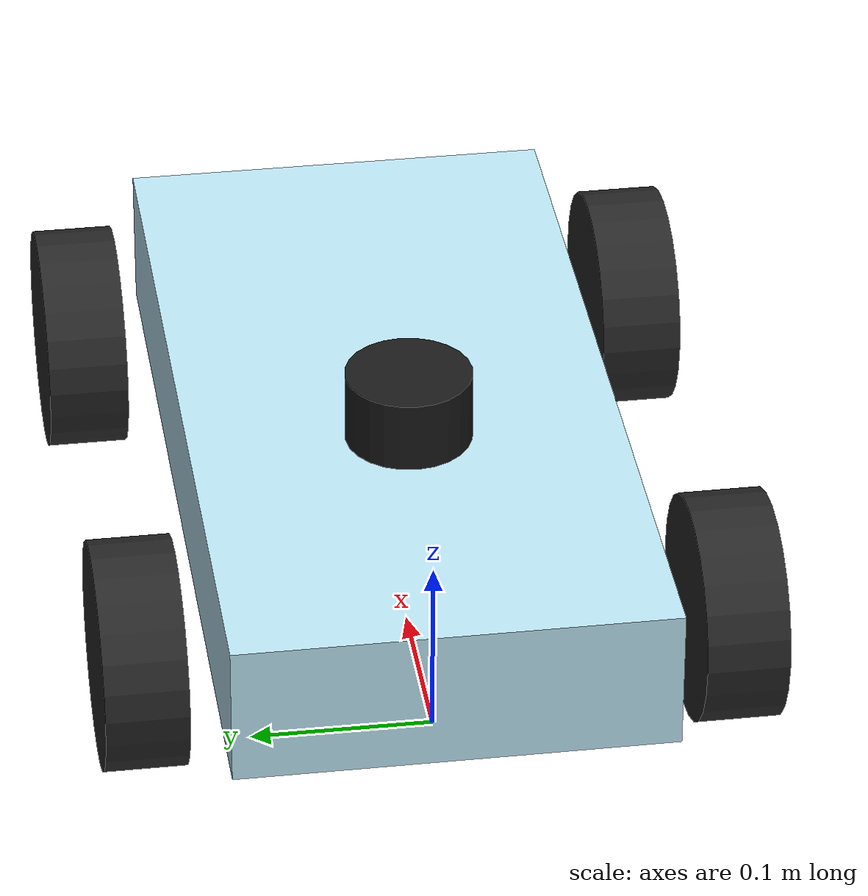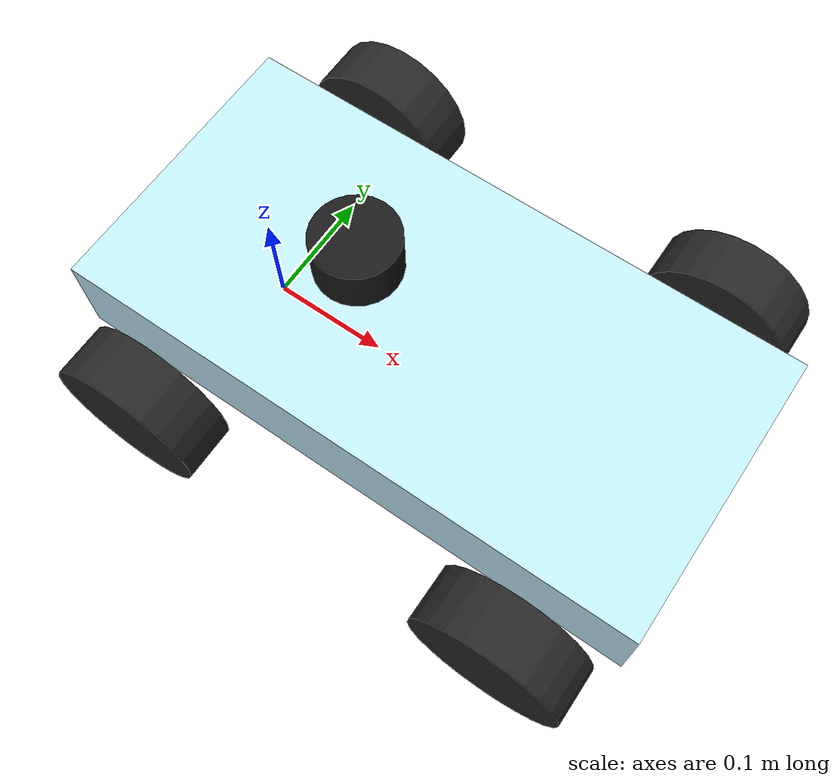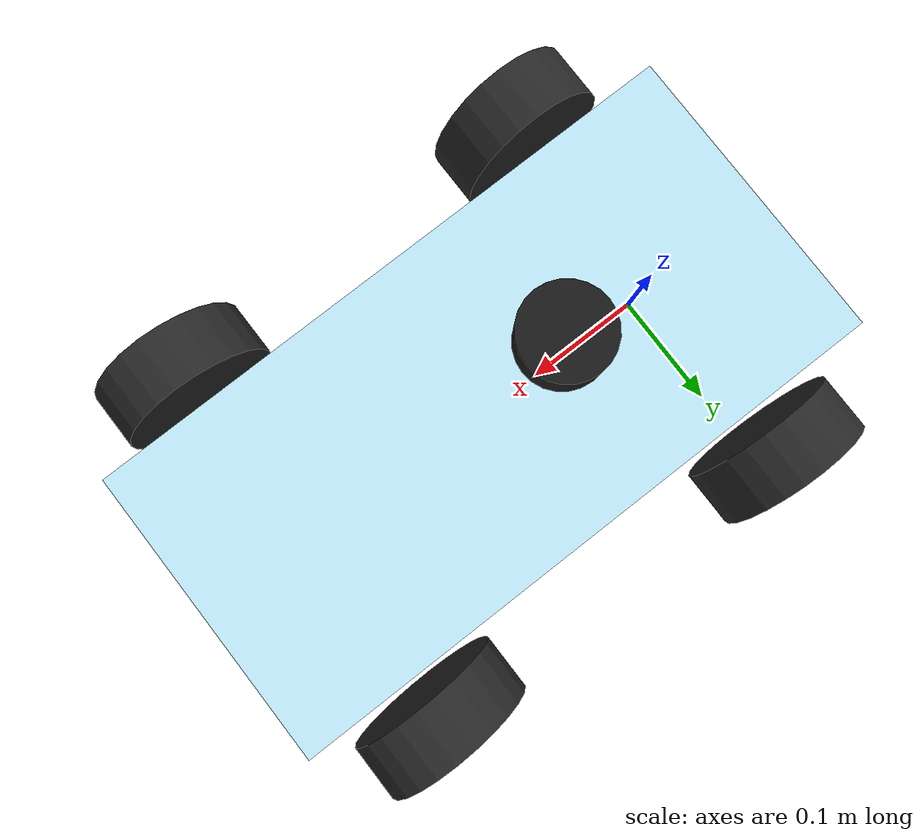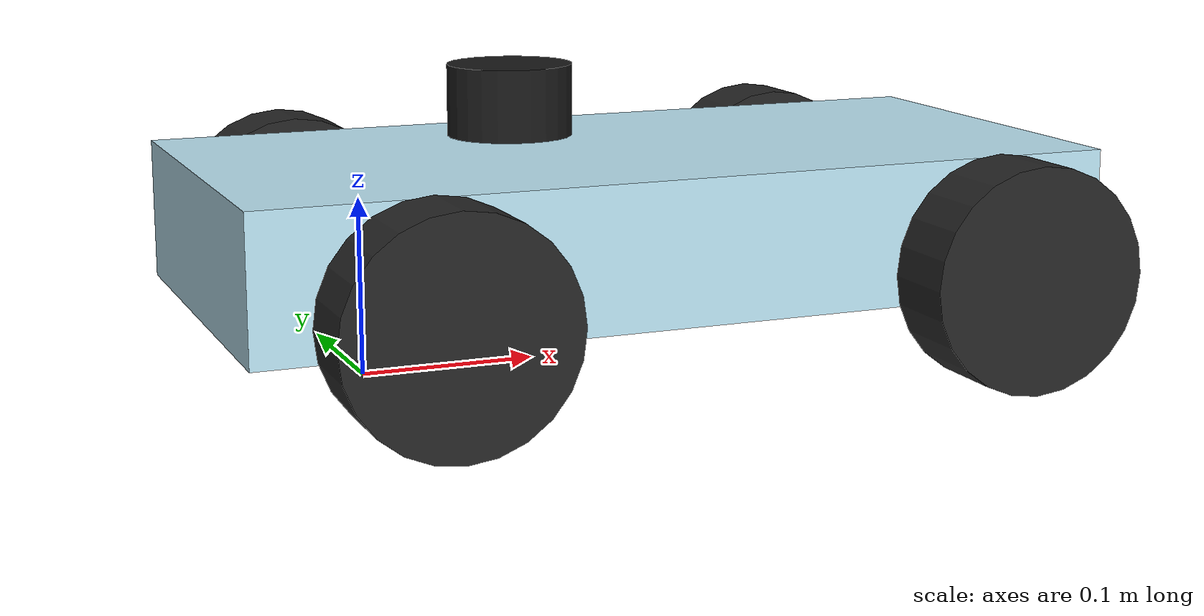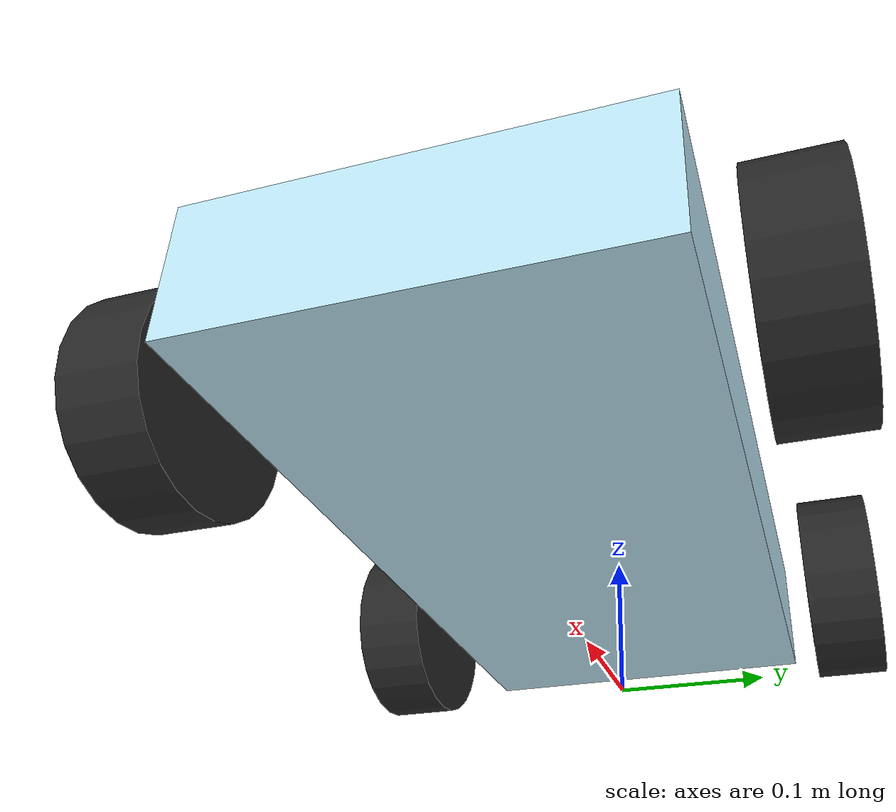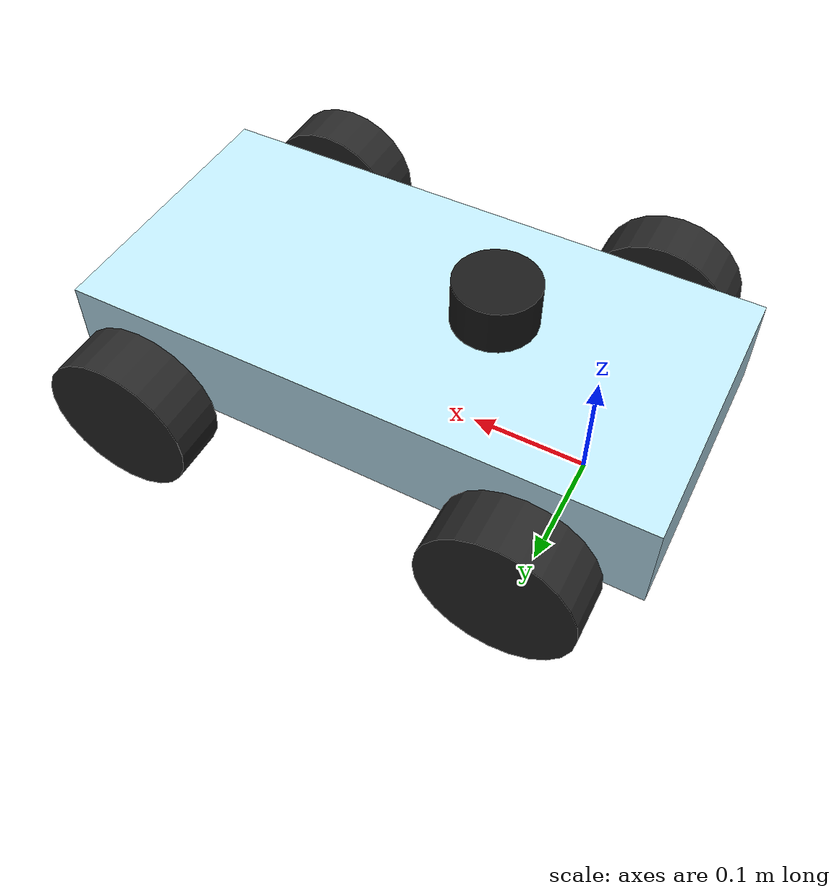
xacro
<?xml version="1.0"?>
<robot name="smartnav_akm" xmlns:xacro="http://www.ros.org/wiki/xacro">

  <xacro:arg name="lidar_x" default="0.08874"/>
  <!-- same = 跟 lidar_x 一樣（感測器就在 TF 說的位置） -->
  <xacro:arg name="lidar_x_actual" default="same"/>
  <xacro:arg name="lidar_z" default="0.15"/>
  <xacro:arg name="lidar_samples" default="390"/>
  <xacro:property name="lidar_x" value="$(arg lidar_x)"/>
  <xacro:property name="lidar_x_actual_raw" value="$(arg lidar_x_actual)"/>
  <xacro:property name="lidar_z" value="$(arg lidar_z)"/>
  <xacro:property name="lidar_samples" value="$(arg lidar_samples)"/>

  <xacro:property name="PI" value="3.141592653589793"/>
  <xacro:property name="wheel_base" value="0.322"/>
  <xacro:property name="track" value="0.322"/>
  <xacro:property name="wheel_r" value="0.0625"/>
  <xacro:property name="wheel_w" value="0.045"/>
  <xacro:property name="base_link_z" value="0.0423"/>
  <!-- 韌體最小迴轉半徑 0.750 對應的舵角：atan(0.322 / 0.750) = 0.4056 rad（23.2 度）。
       實車做不到這麼小（左 1.030／右 1.183），那部分交給 akm_realism 節點截斷。 -->
  <xacro:property name="steer_limit" value="0.4056"/>
  <!-- 車殼：x -0.09～0.40、寬 0.24（輪子在外側，含輪子總寬 0.37）、離地 0.04～0.12 -->
  <xacro:property name="body_x0" value="-0.09"/>
  <xacro:property name="body_x1" value="0.40"/>
  <xacro:property name="body_w" value="0.24"/>
  <xacro:property name="body_z0" value="0.04"/>
  <xacro:property name="body_z1" value="0.12"/>
  <xacro:property name="body_mass" value="5.0"/>
  <xacro:property name="wheel_mass" value="0.3"/>

  <!-- 光達掃描規格：ls_N10（wheeltec_param.yaml lidar_type: ls_N10_uart）。
       每圈 390 點是由 scan_filter 的實測「車尾 80 度內 87 根光束」推的（≈0.92 度/點）；
       0.15 m 最小距離取自 lslidar_x10.yaml 的 min_range。待 V0 讀實車 /scan 規格後校正。 -->

  <!-- ─── 慣量 ─────────────────────────────────────────── -->
  <xacro:macro name="box_inertial" params="m x y z ox oy oz">
    <inertial>
      <origin xyz="${ox} ${oy} ${oz}"/>
      <mass value="${m}"/>
      <inertia ixx="${m*(y*y+z*z)/12}" ixy="0" ixz="0"
               iyy="${m*(x*x+z*z)/12}" iyz="0" izz="${m*(x*x+y*y)/12}"/>
    </inertial>
  </xacro:macro>

  <!-- 輪子轉軸是 y：iyy = m r²/2，另外兩軸 = m(3r² + w²)/12 -->
  <xacro:macro name="wheel_link" params="name">
    <link name="${name}">
      <inertial>
        <mass value="${wheel_mass}"/>
        <inertia ixx="${wheel_mass*(3*wheel_r*wheel_r+wheel_w*wheel_w)/12}" ixy="0" ixz="0"
                 iyy="${wheel_mass*wheel_r*wheel_r/2}" iyz="0"
                 izz="${wheel_mass*(3*wheel_r*wheel_r+wheel_w*wheel_w)/12}"/>
      </inertial>
      <visual>
        <origin rpy="${PI/2} 0 0"/>
        <geometry><cylinder radius="${wheel_r}" length="${wheel_w}"/></geometry>
        <material name="tyre"><color rgba="0.15 0.15 0.15 1"/></material>
      </visual>
      <collision>
        <origin rpy="${PI/2} 0 0"/>
        <geometry><cylinder radius="${wheel_r}" length="${wheel_w}"/></geometry>
      </collision>
    </link>
    <gazebo reference="${name}">
      <mu1>1.0</mu1>
      <mu2>1.0</mu2>
    </gazebo>
  </xacro:macro>

  <!-- ─── 車身 ─────────────────────────────────────────── -->
  <link name="base_footprint"/>

  <joint name="base_joint" type="fixed">
    <parent link="base_footprint"/>
    <child link="base_link"/>
    <origin xyz="0 0 ${base_link_z}"/>
  </joint>

  <link name="base_link">
    <xacro:box_inertial m="${body_mass}" x="${body_x1-body_x0}" y="${body_w}" z="${body_z1-body_z0}"
                        ox="${(body_x0+body_x1)/2}" oy="0" oz="${(body_z0+body_z1)/2-base_link_z}"/>
    <visual>
      <origin xyz="${(body_x0+body_x1)/2} 0 ${(body_z0+body_z1)/2-base_link_z}"/>
      <geometry><box size="${body_x1-body_x0} ${body_w} ${body_z1-body_z0}"/></geometry>
      <material name="shell"><color rgba="0.74 0.90 0.96 1"/></material>
    </visual>
    <collision>
      <origin xyz="${(body_x0+body_x1)/2} 0 ${(body_z0+body_z1)/2-base_link_z}"/>
      <geometry><box size="${body_x1-body_x0} ${body_w} ${body_z1-body_z0}"/></geometry>
    </collision>
  </link>

  <!-- ─── 後輪（驅動輪，里程計用這兩顆）──────────────────── -->
  <xacro:wheel_link name="rl_wheel"/>
  <xacro:wheel_link name="rr_wheel"/>
  <joint name="rl_wheel_joint" type="continuous">
    <parent link="base_link"/>
    <child link="rl_wheel"/>
    <origin xyz="0 ${track/2} ${wheel_r-base_link_z}"/>
    <axis xyz="0 1 0"/>
  </joint>
  <joint name="rr_wheel_joint" type="continuous">
    <parent link="base_link"/>
    <child link="rr_wheel"/>
    <origin xyz="0 ${-track/2} ${wheel_r-base_link_z}"/>
    <axis xyz="0 1 0"/>
  </joint>

  <!-- ─── 前輪（轉向＋自由滾動；實車是後驅）───────────────── -->
  <xacro:macro name="steer_link" params="name">
    <link name="${name}">
      <inertial>
        <mass value="0.05"/>
        <inertia ixx="1e-5" ixy="0" ixz="0" iyy="1e-5" iyz="0" izz="1e-5"/>
      </inertial>
    </link>
  </xacro:macro>
  <xacro:steer_link name="fl_steer"/>
  <xacro:steer_link name="fr_steer"/>
  <joint name="fl_steer_joint" type="revolute">
    <parent link="base_link"/>
    <child link="fl_steer"/>
    <origin xyz="${wheel_base} ${track/2} ${wheel_r-base_link_z}"/>
    <axis xyz="0 0 1"/>
    <limit lower="-0.6" upper="0.6" effort="10" velocity="5"/>
  </joint>
  <joint name="fr_steer_joint" type="revolute">
    <parent link="base_link"/>
    <child link="fr_steer"/>
    <origin xyz="${wheel_base} ${-track/2} ${wheel_r-base_link_z}"/>
    <axis xyz="0 0 1"/>
    <limit lower="-0.6" upper="0.6" effort="10" velocity="5"/>
  </joint>
  <xacro:wheel_link name="fl_wheel"/>
  <xacro:wheel_link name="fr_wheel"/>
  <joint name="fl_wheel_joint" type="continuous">
    <parent link="fl_steer"/>
    <child link="fl_wheel"/>
    <axis xyz="0 1 0"/>
  </joint>
  <joint name="fr_wheel_joint" type="continuous">
    <parent link="fr_steer"/>
    <child link="fr_wheel"/>
    <axis xyz="0 1 0"/>
  </joint>

  <!-- ─── 光達 ─────────────────────────────────────────── -->
  <!-- TF（robot_state_publisher 發）用 lidar_x；Gazebo 裡的感測器放在 lidar_x_actual。
       兩者預設相同。laser 連結要有 inertial，否則 URDF 轉 SDF 時整個連結（連同感測器）會被丟掉。 -->
  <joint name="laser_joint" type="fixed">
    <parent link="base_footprint"/>
    <child link="laser"/>
    <origin xyz="${lidar_x} 0.00067 ${lidar_z}"/>
  </joint>
  <link name="laser">
    <inertial>
      <mass value="0.1"/>
      <inertia ixx="1e-5" ixy="0" ixz="0" iyy="1e-5" iyz="0" izz="1e-5"/>
    </inertial>
    <visual>
      <geometry><cylinder radius="0.035" length="0.04"/></geometry>
      <material name="lidar"><color rgba="0.1 0.1 0.1 1"/></material>
    </visual>
  </link>

  <xacro:arg name="self_echo_bars" default="false"/>
  <xacro:macro name="echo_bar" params="side sign">
    <joint name="echo_bar_${side}_joint" type="fixed">
      <parent link="base_footprint"/>
      <child link="echo_bar_${side}"/>
      <origin xyz="${lidar_x - 0.020} ${0.00067 + sign * 0.17} ${lidar_z}"/>
    </joint>
    <link name="echo_bar_${side}">
      <inertial>
        <mass value="0.05"/>
        <inertia ixx="1e-5" ixy="0" ixz="0" iyy="1e-5" iyz="0" izz="1e-5"/>
      </inertial>
      <visual>
        <geometry><box size="0.05 0.02 0.24"/></geometry>
        <material name="alu_${side}"><color rgba="0.75 0.75 0.78 1"/></material>
      </visual>
    </link>
  </xacro:macro>
  <xacro:if value="$(arg self_echo_bars)">
    <xacro:echo_bar side="left" sign="1"/>
    <xacro:echo_bar side="right" sign="-1"/>
  </xacro:if>

  <gazebo reference="laser">
    <sensor name="lidar" type="gpu_lidar">
      <!-- 感測器相對 laser 連結的位移 = 實際位置 − TF 位置（預設 0） -->
      <pose>${0.0 if str(lidar_x_actual_raw) == 'same' else float(lidar_x_actual_raw) - float(lidar_x)} 0 0 0 0 0</pose>
      <gz_frame_id>laser</gz_frame_id>
      <topic>/smartnav_sim/scan</topic>
      <update_rate>10</update_rate>
      <always_on>true</always_on>
      <visualize>false</visualize>
      <lidar>
        <scan>
          <horizontal>
            <samples>${lidar_samples}</samples>
            <resolution>1</resolution>
            <!-- 跟實車一樣從 −180 度起算（scan_filter_cc 的車尾遮罩依賴這點）；
                 最後一點停在 180 − 一格，不然頭尾兩點重疊 -->
            <min_angle>${-PI}</min_angle>
            <max_angle>${PI - 2*PI/float(lidar_samples)}</max_angle>
          </horizontal>
          <vertical>
            <samples>1</samples>
            <resolution>1</resolution>
            <min_angle>0</min_angle>
            <max_angle>0</max_angle>
          </vertical>
        </scan>
        <range>
          <min>0.15</min>
          <max>12.0</max>
          <resolution>0.01</resolution>
        </range>
        <noise>
          <type>gaussian</type>
          <mean>0.0</mean>
          <stddev>0.01</stddev>
        </noise>
      </lidar>
    </sensor>
  </gazebo>

  <!-- ─── 阿克曼驅動＋里程計 ──────────────────────────────── -->
  <!-- 只列後輪當驅動輪（實車是後驅、編碼器在後輪馬達上）；前輪自由滾動、只管轉向。
       里程計直接發 odom_combined -> base_footprint，取代實車的 EKF。 -->
  <gazebo>
    <plugin filename="gz-sim-ackermann-steering-system" name="gz::sim::systems::AckermannSteering">
      <left_joint>rl_wheel_joint</left_joint>
      <right_joint>rr_wheel_joint</right_joint>
      <left_steering_joint>fl_steer_joint</left_steering_joint>
      <right_steering_joint>fr_steer_joint</right_steering_joint>
      <kingpin_width>${track}</kingpin_width>
      <steering_limit>${steer_limit}</steering_limit>
      <wheel_base>${wheel_base}</wheel_base>
      <wheel_separation>${track}</wheel_separation>
      <wheel_radius>${wheel_r}</wheel_radius>
      <min_velocity>-0.6</min_velocity>
      <max_velocity>0.6</max_velocity>
      <min_acceleration>-1.0</min_acceleration>
      <max_acceleration>1.0</max_acceleration>
      <topic>/smartnav_sim/cmd_vel</topic>
      <odom_topic>/smartnav_sim/odom</odom_topic>
      <tf_topic>/smartnav_sim/tf</tf_topic>
      <frame_id>odom_combined</frame_id>
      <child_frame_id>base_footprint</child_frame_id>
      <odom_publish_frequency>30</odom_publish_frequency>
      <!-- 轉向關節的 P 增益。不設的話舵角到位太慢：2026-09-26 實測左右打到底的半徑
           都比指令大 15%（1.181／1.369）。設 10 之後穩態半徑（里程計）左 1.007／右 1.163，
           跟 akm_realism 的 1.030／1.183 差 2%。 -->
      <steer_p_gain>10.0</steer_p_gain>
    </plugin>
  </gazebo>

</robot>
